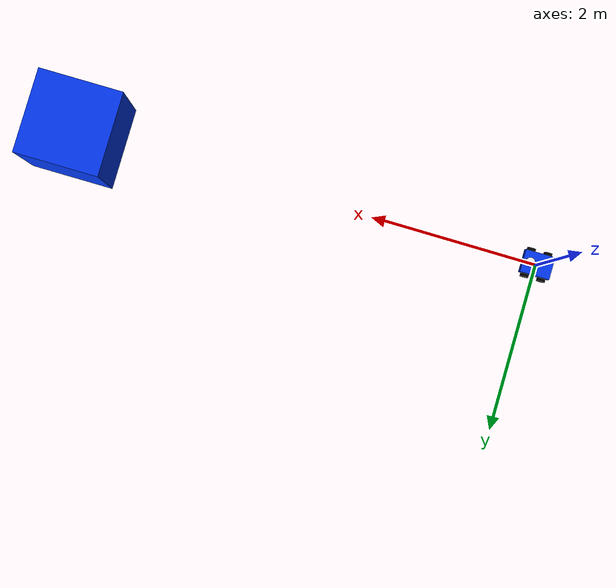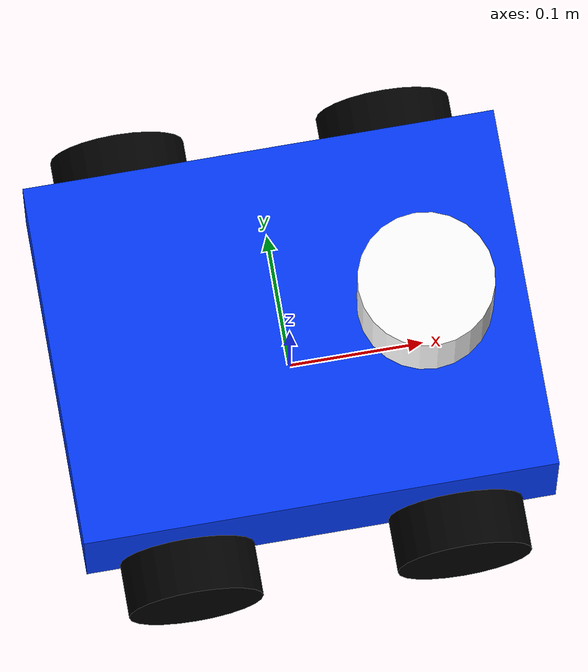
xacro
<?xml version="1.0"?>
<robot name="nanobot" xmlns:xacro="http://ros.org/wiki/xacro">

<!-- This are the colors used in the design of the robot -->

  <material name="blue">
    <color rgba="0 0 0.8 1"/>
  </material>

  <material name="black">
    <color rgba="0 0 0 1"/>
  </material>

  <material name="white">
    <color rgba="1 1 1 1"/>
  </material>

  <material name="vibrantblue" >
    <color rgba="0.011764705882352941 0.2235294117647059 0.9725490196078431 1.0" />
  </material>

<!--The gazebo plugins -->

<gazebo reference="base_link">
   <material>Gazebo/Blue</material>
</gazebo>
<gazebo reference="front_wheel_right">
   <material>Gazebo/Black</material>
</gazebo>
<gazebo reference="front_wheel_left">
   <material>Gazebo/Black</material>
</gazebo>
<gazebo reference="rear_wheel_right">
   <material>Gazebo/Black</material>
</gazebo>
<gazebo reference="rear_wheel_left">
   <material>Gazebo/Black</material>
</gazebo>
<gazebo reference="laser_sensor_link">
   <material>Gazebo/White</material>
</gazebo>

<gazebo>
  <plugin name="skid_steer_drive_controller" filename="libgazebo_ros_skid_steer_drive.so">
    <updateRate>10.0</updateRate>
    <robotNamespace>/</robotNamespace>
    <leftFrontJoint>base_link_to_front_wheel_left</leftFrontJoint>
    <rightFrontJoint>base_link_to_front_wheel_right</rightFrontJoint>
    <leftRearJoint>base_link_to_rear_wheel_left</leftRearJoint>
    <rightRearJoint>base_link_to_rear_wheel_right</rightRearJoint>
    <wheelSeparation>0.31</wheelSeparation>
    <wheelDiameter>0.1</wheelDiameter>
    <robotBaseFrame>base_footprint</robotBaseFrame>
    <torque>20</torque>
    <topicName>/cmd_vel</topicName>
    <broadcastTF>true</broadcastTF>
    <odometryTopic>/odom</odometryTopic>
    <odometryFrame>odom</odometryFrame>
    <odometryRate>10.0</odometryRate>
</plugin>
</gazebo>

  <gazebo reference="laser_sensor_link">
    <sensor type="ray" name="head_hokuyo_sensor">
      <pose>0 0 0 0 0 0</pose>
      <visualize>false</visualize>
      <update_rate>10</update_rate>
      <ray>
        <scan>
          <horizontal>
            <samples>720</samples>
            <resolution>1</resolution>
            <min_angle>-3.14159265</min_angle>
            <max_angle>3.14159265</max_angle>
          </horizontal>
        </scan>
        <range>
          <min>0.10</min>
          <max>10.0</max>
          <resolution>0.01</resolution>
        </range>
      </ray>
      <plugin name="gazebo_ros_head_hokuyo_controller" filename="libgazebo_ros_laser.so">
        <topicName>/nanobot/laser/scan</topicName>
        <frameName>laser_sensor_link</frameName>
      </plugin>
    </sensor>
  </gazebo>

<!-- These are the description of a 3D model of a robot -->
<link name="base_footprint">
    <origin rpy="0 0 0" xyz="0 0 0"/>
</link>

<link name="base_link">
   <visual>
      <geometry>
         <box size= "0.35 0.27 0.1"/>
      </geometry>
      <origin rpy="0 0 0" xyz="0 0 0"/>
      <material name="vibrantblue"/>
   </visual>
   <collision name="collision_chasis">
      <geometry>
         <box size="0.35 0.27 0.1"/>
      </geometry>
      <material name="vibrantblue"/>
   </collision>
   <inertial>
      <mass value="1.0"/>
      <inertia ixx="1.5e-3" iyy="4.1667e-3" izz="5.4167e-4"
         ixy="0" ixz="0" iyz="0"/>
   </inertial>
  </link>

    <joint name="chassis" type="fixed">
        <axis xyz="0 0 0"/>
        <parent link="base_footprint"/>
        <child link="base_link"/>
        <origin rpy="0 0 0" xyz="0 0 0.07"/>
    </joint>

  <link name="front_wheel_right">
      <visual>
         <geometry>
            <cylinder length="0.04" radius="0.05"/>
         </geometry>
         <origin rpy="0 1.57079633 1.57079633" xyz="0.0 0.0 0.0"/>
         <material name="black"/>
      </visual>
      <collision name="front_wheel_right_collision">
         <geometry>
            <cylinder length="0.04" radius="0.05"/>
         </geometry>
         <origin rpy="0 1.57079633 1.57079633" xyz="0.0 0.0 0.0"/>
      </collision>
      <inertial>
         <mass value="0.1"/>
         <origin rpy="0 1.57079633 0" xyz="0.0 0.0 0.0"/>
         <inertia ixx="5.333e-5" iyy="5.333e-5" izz="8.00e-5"
         ixy="0" ixz="0" iyz="0"/>
      </inertial>
  </link>

  <joint name="base_link_to_front_wheel_right" type="continuous">
    <axis xyz="0 1 0"/>
    <parent link="base_link"/>
    <child link="front_wheel_right"/>
    <origin rpy="0 0 0" xyz="0.1 -0.155 -0.04"/>
  </joint>

  <link name="front_wheel_left">
      <visual>
         <geometry>
            <cylinder length="0.04" radius="0.05"/>
         </geometry>
         <origin rpy="0 1.57079633 1.57079633" xyz="0.0 0.0 0.0"/>
         <material name="black"/>
      </visual>
      <collision name="front_wheel_left_collision">
         <geometry>
            <cylinder length="0.04" radius="0.05"/>
         </geometry>
         <origin rpy="0 1.57079633 1.57079633" xyz="0.0 0.0 0.0"/>
      </collision>
      <inertial>
         <mass value="0.1"/>
         <origin rpy="0 1.57079633 0" xyz="0.0 0.0 0.0"/>
         <inertia ixx="5.333e-5" iyy="5.333e-5" izz="8.00e-5"
         ixy="0" ixz="0" iyz="0"/>
      </inertial>
  </link>

  <joint name="base_link_to_front_wheel_left" type="continuous">
    <axis xyz="0 1 0"/>
    <parent link="base_link"/>
    <child link="front_wheel_left"/>
    <origin rpy="0 0 0" xyz="0.1 0.155 -0.04"/>
  </joint>

    <link name="rear_wheel_right">
      <visual>
         <geometry>
            <cylinder length="0.04" radius="0.05"/>
         </geometry>
         <origin rpy="0 1.57079633 1.57079633" xyz="0.0 0.0 0.0"/>
         <material name="black"/>
      </visual>
      <collision name="rear_wheel_right_collision">
         <geometry>
            <cylinder length="0.04" radius="0.05"/>
         </geometry>
         <origin rpy="0 1.57079633 1.57079633" xyz="0.0 0.0 0.0"/>
      </collision>
      <inertial>
         <mass value="0.1"/>
         <origin rpy="0 1.57079633 0" xyz="0.0 0.0 0.0"/>
         <inertia ixx="5.333e-5" iyy="5.333e-5" izz="8.00e-5"
         ixy="0" ixz="0" iyz="0"/>
      </inertial>
  </link>

  <joint name="base_link_to_rear_wheel_right" type="continuous">
    <axis xyz="0 1 0"/>
    <parent link="base_link"/>
    <child link="rear_wheel_right"/>
    <origin rpy="0 0 0" xyz="-0.1 -0.155 -0.04"/>
  </joint>

      <link name="rear_wheel_left">
      <visual>
         <geometry>
            <cylinder length="0.04" radius="0.05"/>
         </geometry>
         <origin rpy="0 1.57079633 1.57079633" xyz="0.0 0.0 0.0"/>
         <material name="black"/>
      </visual>
      <collision name="rear_wheel_left_collision">
         <geometry>
            <cylinder length="0.04" radius="0.05"/>
         </geometry>
         <origin rpy="0 1.57079633 1.57079633" xyz="0.0 0.0 0.0"/>
      </collision>
      <inertial>
         <mass value="0.1"/>
         <origin rpy="0 1.57079633 0" xyz="0.0 0.0 0.0"/>
         <inertia ixx="5.333e-5" iyy="5.333e-5" izz="8.00e-5"
         ixy="0" ixz="0" iyz="0"/>
      </inertial>
  </link>

  <joint name="base_link_to_rear_wheel_left" type="continuous">
    <axis xyz="0 1 0"/>
    <parent link="base_link"/>
    <child link="rear_wheel_left"/>
    <origin rpy="0 0 0" xyz="-0.1 0.155 -0.04"/>
  </joint>

  <link name="laser_sensor_link">
    <visual>
      <origin rpy="0 0 0" xyz="0 0 0"/>
      <geometry>
        <cylinder length="0.1" radius="0.05"/>
      </geometry>
      <material name="white"/>
    </visual>

    <collision name="collision_laser_link">
     <geometry>
      <cylinder length="0.1" radius="0.05"/>
     </geometry>
    </collision>
  </link>

  <joint name="base_link_to_laser_sensor" type="fixed">
    <axis xyz="0 0 0"/>
    <parent link="base_link"/>
    <child link="laser_sensor_link"/>
    <origin rpy="0 0 0" xyz="0.1 0 0.07"/>
  </joint>

  <link name="test_link">
   <visual>
      <geometry>
         <box size= "1 1 1"/>
      </geometry>
      <origin rpy="0 0 0" xyz="0 0 0"/>
      <material name="vibrantblue"/>
   </visual>
   <collision name="collision_chasis">
      <geometry>
         <box size="1 1 1"/>
      </geometry>
      <material name="vibrantblue"/>
   </collision>
   <inertial>
      <mass value="0.1"/>
      <inertia ixx="1.5e-3" iyy="4.1667e-3" izz="5.4167e-4"
         ixy="0" ixz="0" iyz="0"/>
   </inertial>
  </link>

  <joint name="test_joint" type="fixed">
    <axis xyz="0 0 0"/>
    <parent link="laser_sensor_link"/>
    <child link="test_link"/>
    <origin rpy="0 0 0" xyz="5.5 0 0"/>
  </joint>

</robot>
